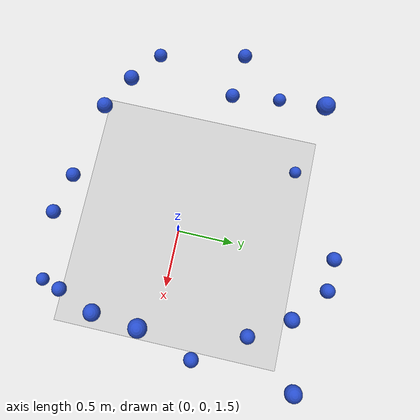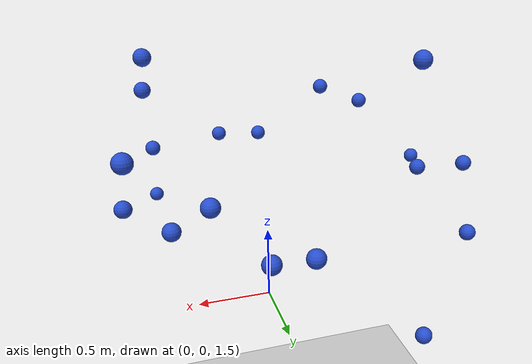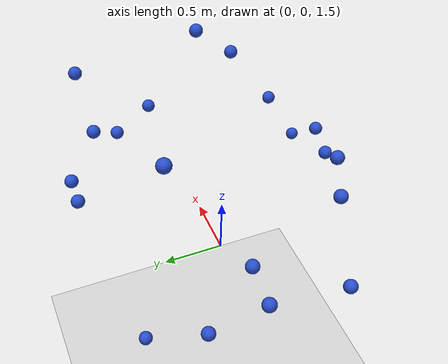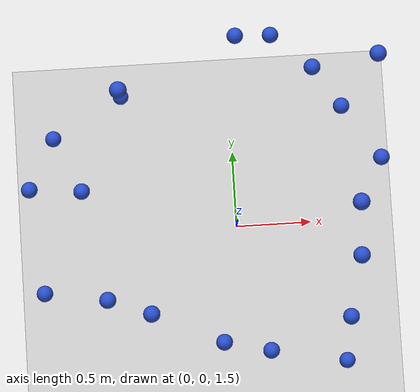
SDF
<sdf version="1.7">
 <world name="default">
  <light name="sun" type="directional">
   <pose>0 0 10 0 -0 0</pose>
   <diffuse>0.8 0.8 0.8 1</diffuse>
   <specular>0.2 0.2 0.2 1</specular>
   <attenuation>
    <range>1000</range>
    <constant>0.9</constant>
    <linear>0.01</linear>
    <quadratic>0.001</quadratic>
   </attenuation>
   <direction>-0.5 0.1 -0.9</direction>
   <spot><inner_angle>0</inner_angle><outer_angle>0</outer_angle><falloff>0</falloff></spot>
  </light>
  <model name="ground_plane">
   <static>1</static>
   <link name="link">
    <collision name="collision">
     <geometry><plane><normal>0 0 1</normal><size>100 100</size></plane></geometry>
     <surface>
      <contact><collide_bitmask>65535</collide_bitmask></contact>
      <friction><ode><mu>100</mu><mu2>50</mu2></ode></friction>
     </surface>
    </collision>
    <visual name="visual">
     <cast_shadows>0</cast_shadows>
     <geometry><plane><normal>0 0 1</normal><size>100 100</size></plane></geometry>
     <material>
      <script><uri>file://media/materials/scripts/gazebo.material</uri><name>Gazebo/Grey</name></script>
     </material>
    </visual>
   </link>
  </model>
  <gravity>0 0 -9.8</gravity>
  <magnetic_field>6e-06 2.3e-05 -4.2e-05</magnetic_field>
  <atmosphere type="adiabatic"/>
  <physics type="ode">
   <max_step_size>0.001</max_step_size>
   <real_time_factor>1</real_time_factor>
   <real_time_update_rate>1000</real_time_update_rate>
  </physics>
  <scene><ambient>0.4 0.4 0.4 1</ambient><background>0.7 0.7 0.7 1</background><shadows>1</shadows></scene>
  <spherical_coordinates>
   <surface_model>EARTH_WGS84</surface_model>
   <latitude_deg>0</latitude_deg>
   <longitude_deg>0</longitude_deg>
   <elevation>0</elevation>
   <heading_deg>0</heading_deg>
  </spherical_coordinates>
  <model name="unit_sphere">
   <static>1</static>
   <pose>0.684062 0.636693 2.42007 0 -0 0</pose>
   <link name="link">
    <inertial>
     <mass>1</mass>
     <inertia><ixx>0.1</ixx><ixy>0</ixy><ixz>0</ixz><iyy>0.1</iyy><iyz>0</iyz><izz>0.1</izz></inertia>
    </inertial>
    <collision name="collision"><geometry><sphere><radius>0.0518856</radius></sphere></geometry></collision>
    <visual name="visual">
     <geometry><sphere><radius>0.0518856</radius></sphere></geometry>
     <material>
      <script><name>Gazebo/Blue</name><uri>file://media/materials/scripts/gazebo.material</uri></script>
     </material>
    </visual>
   </link>
  </model>
  <model name="unit_sphere_clone">
   <static>1</static>
   <pose>-0.979595 0.19178 2.42007 0 -0 0</pose>
   <link name="link">
    <inertial>
     <mass>1</mass>
     <inertia><ixx>0.1</ixx><ixy>0</ixy><ixz>0</ixz><iyy>0.1</iyy><iyz>0</iyz><izz>0.1</izz></inertia>
    </inertial>
    <collision name="collision"><geometry><sphere><radius>0.0518856</radius></sphere></geometry></collision>
    <visual name="visual">
     <geometry><sphere><radius>0.0518856</radius></sphere></geometry>
     <material>
      <script><name>Gazebo/Blue</name><uri>file://media/materials/scripts/gazebo.material</uri></script>
     </material>
    </visual>
   </link>
  </model>
  <model name="unit_sphere_clone_0">
   <static>1</static>
   <pose>-0.840493 -0.515681 2.69235 0 -0 0</pose>
   <link name="link">
    <inertial>
     <mass>1</mass>
     <inertia><ixx>0.1</ixx><ixy>0</ixy><ixz>0</ixz><iyy>0.1</iyy><iyz>0</iyz><izz>0.1</izz></inertia>
    </inertial>
    <collision name="collision"><geometry><sphere><radius>0.0518856</radius></sphere></geometry></collision>
    <visual name="visual">
     <geometry><sphere><radius>0.0518856</radius></sphere></geometry>
     <material>
      <script><name>Gazebo/Blue</name><uri>file://media/materials/scripts/gazebo.material</uri></script>
     </material>
    </visual>
   </link>
  </model>
  <model name="unit_sphere_clone_1">
   <static>1</static>
   <pose>0.658514 -0.691484 2.42007 0 -0 0</pose>
   <link name="link">
    <inertial>
     <mass>1</mass>
     <inertia><ixx>0.1</ixx><ixy>0</ixy><ixz>0</ixz><iyy>0.1</iyy><iyz>0</iyz><izz>0.1</izz></inertia>
    </inertial>
    <collision name="collision"><geometry><sphere><radius>0.0518856</radius></sphere></geometry></collision>
    <visual name="visual">
     <geometry><sphere><radius>0.0518856</radius></sphere></geometry>
     <material>
      <script><name>Gazebo/Blue</name><uri>file://media/materials/scripts/gazebo.material</uri></script>
     </material>
    </visual>
   </link>
  </model>
  <model name="unit_sphere_clone_2">
   <static>1</static>
   <pose>-0.686864 0.683036 3.24975 0 -0 0</pose>
   <link name="link">
    <inertial>
     <mass>1</mass>
     <inertia><ixx>0.1</ixx><ixy>0</ixy><ixz>0</ixz><iyy>0.1</iyy><iyz>0</iyz><izz>0.1</izz></inertia>
    </inertial>
    <collision name="collision"><geometry><sphere><radius>0.0518856</radius></sphere></geometry></collision>
    <visual name="visual">
     <geometry><sphere><radius>0.0518856</radius></sphere></geometry>
     <material>
      <script><name>Gazebo/Blue</name><uri>file://media/materials/scripts/gazebo.material</uri></script>
     </material>
    </visual>
   </link>
  </model>
  <model name="unit_sphere_clone_3">
   <static>1</static>
   <pose>-0.728661 0.905697 1.6253 0 -0 0</pose>
   <link name="link">
    <inertial>
     <mass>1</mass>
     <inertia><ixx>0.1</ixx><ixy>0</ixy><ixz>0</ixz><iyy>0.1</iyy><iyz>0</iyz><izz>0.1</izz></inertia>
    </inertial>
    <collision name="collision"><geometry><sphere><radius>0.0518856</radius></sphere></geometry></collision>
    <visual name="visual">
     <geometry><sphere><radius>0.0518856</radius></sphere></geometry>
     <material>
      <script><name>Gazebo/Blue</name><uri>file://media/materials/scripts/gazebo.material</uri></script>
     </material>
    </visual>
   </link>
  </model>
  <model name="unit_sphere_clone_4">
   <static>1</static>
   <pose>0.502986 0.85782 2.6383 0 -0 0</pose>
   <link name="link">
    <inertial>
     <mass>1</mass>
     <inertia><ixx>0.1</ixx><ixy>0</ixy><ixz>0</ixz><iyy>0.1</iyy><iyz>0</iyz><izz>0.1</izz></inertia>
    </inertial>
    <collision name="collision"><geometry><sphere><radius>0.0518856</radius></sphere></geometry></collision>
    <visual name="visual">
     <geometry><sphere><radius>0.0518856</radius></sphere></geometry>
     <material>
      <script><name>Gazebo/Blue</name><uri>file://media/materials/scripts/gazebo.material</uri></script>
     </material>
    </visual>
   </link>
  </model>
  <model name="unit_sphere_clone_5">
   <static>1</static>
   <pose>0.147591 -0.872534 2.42007 0 -0 0</pose>
   <link name="link">
    <inertial>
     <mass>1</mass>
     <inertia><ixx>0.1</ixx><ixy>0</ixy><ixz>0</ixz><iyy>0.1</iyy><iyz>0</iyz><izz>0.1</izz></inertia>
    </inertial>
    <collision name="collision"><geometry><sphere><radius>0.0518856</radius></sphere></geometry></collision>
    <visual name="visual">
     <geometry><sphere><radius>0.0518856</radius></sphere></geometry>
     <material>
      <script><name>Gazebo/Blue</name><uri>file://media/materials/scripts/gazebo.material</uri></script>
     </material>
    </visual>
   </link>
  </model>
  <model name="unit_sphere_clone_6">
   <static>1</static>
   <pose>0.702794 -0.056033 3.19782 0 -0 0</pose>
   <link name="link">
    <inertial>
     <mass>1</mass>
     <inertia><ixx>0.1</ixx><ixy>0</ixy><ixz>0</ixz><iyy>0.1</iyy><iyz>0</iyz><izz>0.1</izz></inertia>
    </inertial>
    <collision name="collision"><geometry><sphere><radius>0.0518856</radius></sphere></geometry></collision>
    <visual name="visual">
     <geometry><sphere><radius>0.0518856</radius></sphere></geometry>
     <material>
      <script><name>Gazebo/Blue</name><uri>file://media/materials/scripts/gazebo.material</uri></script>
     </material>
    </visual>
   </link>
  </model>
  <model name="unit_sphere_clone_7">
   <static>1</static>
   <pose>0.650053 -0.951921 1.94622 0 -0 0</pose>
   <link name="link">
    <inertial>
     <mass>1</mass>
     <inertia><ixx>0.1</ixx><ixy>0</ixy><ixz>0</ixz><iyy>0.1</iyy><iyz>0</iyz><izz>0.1</izz></inertia>
    </inertial>
    <collision name="collision"><geometry><sphere><radius>0.0518856</radius></sphere></geometry></collision>
    <visual name="visual">
     <geometry><sphere><radius>0.0518856</radius></sphere></geometry>
     <material>
      <script><name>Gazebo/Blue</name><uri>file://media/materials/scripts/gazebo.material</uri></script>
     </material>
    </visual>
   </link>
  </model>
  <model name="unit_sphere_clone_8">
   <static>1</static>
   <pose>-0.575002 -0.620808 2.79078 0 -0 0</pose>
   <link name="link">
    <inertial>
     <mass>1</mass>
     <inertia><ixx>0.1</ixx><ixy>0</ixy><ixz>0</ixz><iyy>0.1</iyy><iyz>0</iyz><izz>0.1</izz></inertia>
    </inertial>
    <collision name="collision"><geometry><sphere><radius>0.0518856</radius></sphere></geometry></collision>
    <visual name="visual">
     <geometry><sphere><radius>0.0518856</radius></sphere></geometry>
     <material>
      <script><name>Gazebo/Blue</name><uri>file://media/materials/scripts/gazebo.material</uri></script>
     </material>
    </visual>
   </link>
  </model>
  <model name="unit_sphere_clone_9">
   <static>1</static>
   <pose>-0.141654 -0.80465 2.42007 0 -0 0</pose>
   <link name="link">
    <inertial>
     <mass>1</mass>
     <inertia><ixx>0.1</ixx><ixy>0</ixy><ixz>0</ixz><iyy>0.1</iyy><iyz>0</iyz><izz>0.1</izz></inertia>
    </inertial>
    <collision name="collision"><geometry><sphere><radius>0.0518856</radius></sphere></geometry></collision>
    <visual name="visual">
     <geometry><sphere><radius>0.0518856</radius></sphere></geometry>
     <material>
      <script><name>Gazebo/Blue</name><uri>file://media/materials/scripts/gazebo.material</uri></script>
     </material>
    </visual>
   </link>
  </model>
  <model name="unit_sphere_clone_10">
   <static>1</static>
   <pose>0.042274 1.1243 2.42007 0 -0 0</pose>
   <link name="link">
    <inertial>
     <mass>1</mass>
     <inertia><ixx>0.1</ixx><ixy>0</ixy><ixz>0</ixz><iyy>0.1</iyy><iyz>0</iyz><izz>0.1</izz></inertia>
    </inertial>
    <collision name="collision"><geometry><sphere><radius>0.0518856</radius></sphere></geometry></collision>
    <visual name="visual">
     <geometry><sphere><radius>0.0518856</radius></sphere></geometry>
     <material>
      <script><name>Gazebo/Blue</name><uri>file://media/materials/scripts/gazebo.material</uri></script>
     </material>
    </visual>
   </link>
  </model>
  <model name="unit_sphere_clone_11">
   <static>1</static>
   <pose>-1.25656 -0.425258 2.24536 0 -0 0</pose>
   <link name="link">
    <inertial>
     <mass>1</mass>
     <inertia><ixx>0.1</ixx><ixy>0</ixy><ixz>0</ixz><iyy>0.1</iyy><iyz>0</iyz><izz>0.1</izz></inertia>
    </inertial>
    <collision name="collision"><geometry><sphere><radius>0.0518856</radius></sphere></geometry></collision>
    <visual name="visual">
     <geometry><sphere><radius>0.0518856</radius></sphere></geometry>
     <material>
      <script><name>Gazebo/Blue</name><uri>file://media/materials/scripts/gazebo.material</uri></script>
     </material>
    </visual>
   </link>
  </model>
  <model name="unit_sphere_clone_12">
   <static>1</static>
   <pose>-1.30716 0.220623 2.42007 0 -0 0</pose>
   <link name="link">
    <inertial>
     <mass>1</mass>
     <inertia><ixx>0.1</ixx><ixy>0</ixy><ixz>0</ixz><iyy>0.1</iyy><iyz>0</iyz><izz>0.1</izz></inertia>
    </inertial>
    <collision name="collision"><geometry><sphere><radius>0.0518856</radius></sphere></geometry></collision>
    <visual name="visual">
     <geometry><sphere><radius>0.0518856</radius></sphere></geometry>
     <material>
      <script><name>Gazebo/Blue</name><uri>file://media/materials/scripts/gazebo.material</uri></script>
     </material>
    </visual>
   </link>
  </model>
  <model name="unit_sphere_clone_13">
   <static>1</static>
   <pose>-1.16256 0.58025 2.09806 0 -0 0</pose>
   <link name="link">
    <inertial>
     <mass>1</mass>
     <inertia><ixx>0.1</ixx><ixy>0</ixy><ixz>0</ixz><iyy>0.1</iyy><iyz>0</iyz><izz>0.1</izz></inertia>
    </inertial>
    <collision name="collision"><geometry><sphere><radius>0.0518856</radius></sphere></geometry></collision>
    <visual name="visual">
     <geometry><sphere><radius>0.0518856</radius></sphere></geometry>
     <material>
      <script><name>Gazebo/Blue</name><uri>file://media/materials/scripts/gazebo.material</uri></script>
     </material>
    </visual>
   </link>
  </model>
  <model name="unit_sphere_clone_14">
   <static>1</static>
   <pose>0.265638 1.11628 2.42007 0 -0 0</pose>
   <link name="link">
    <inertial>
     <mass>1</mass>
     <inertia><ixx>0.1</ixx><ixy>0</ixy><ixz>0</ixz><iyy>0.1</iyy><iyz>0</iyz><izz>0.1</izz></inertia>
    </inertial>
    <collision name="collision"><geometry><sphere><radius>0.0518856</radius></sphere></geometry></collision>
    <visual name="visual">
     <geometry><sphere><radius>0.0518856</radius></sphere></geometry>
     <material>
      <script><name>Gazebo/Blue</name><uri>file://media/materials/scripts/gazebo.material</uri></script>
     </material>
    </visual>
   </link>
  </model>
  <model name="unit_sphere_clone_15">
   <static>1</static>
   <pose>0.914639 0.295806 2.42695 0 -0 0</pose>
   <link name="link">
    <inertial>
     <mass>1</mass>
     <inertia><ixx>0.1</ixx><ixy>0</ixy><ixz>0</ixz><iyy>0.1</iyy><iyz>0</iyz><izz>0.1</izz></inertia>
    </inertial>
    <collision name="collision"><geometry><sphere><radius>0.0518856</radius></sphere></geometry></collision>
    <visual name="visual">
     <geometry><sphere><radius>0.0518856</radius></sphere></geometry>
     <material>
      <script><name>Gazebo/Blue</name><uri>file://media/materials/scripts/gazebo.material</uri></script>
     </material>
    </visual>
   </link>
  </model>
  <model name="unit_sphere_clone_16">
   <static>1</static>
   <pose>0.706568 -0.350235 2.93245 0 -0 0</pose>
   <link name="link">
    <inertial>
     <mass>1</mass>
     <inertia><ixx>0.1</ixx><ixy>0</ixy><ixz>0</ixz><iyy>0.1</iyy><iyz>0</iyz><izz>0.1</izz></inertia>
    </inertial>
    <collision name="collision"><geometry><sphere><radius>0.0518856</radius></sphere></geometry></collision>
    <visual name="visual">
     <geometry><sphere><radius>0.0518856</radius></sphere></geometry>
     <material>
      <script><name>Gazebo/Blue</name><uri>file://media/materials/scripts/gazebo.material</uri></script>
     </material>
    </visual>
   </link>
  </model>
  <model name="unit_sphere_clone_17">
   <static>1</static>
   <pose>0.890098 0.868019 2.9214 0 -0 0</pose>
   <link name="link">
    <inertial>
     <mass>1</mass>
     <inertia><ixx>0.1</ixx><ixy>0</ixy><ixz>0</ixz><iyy>0.1</iyy><iyz>0</iyz><izz>0.1</izz></inertia>
    </inertial>
    <collision name="collision"><geometry><sphere><radius>0.0518856</radius></sphere></geometry></collision>
    <visual name="visual">
     <geometry><sphere><radius>0.0518856</radius></sphere></geometry>
     <material>
      <script><name>Gazebo/Blue</name><uri>file://media/materials/scripts/gazebo.material</uri></script>
     </material>
    </visual>
   </link>
  </model>
 </world>
</sdf>
